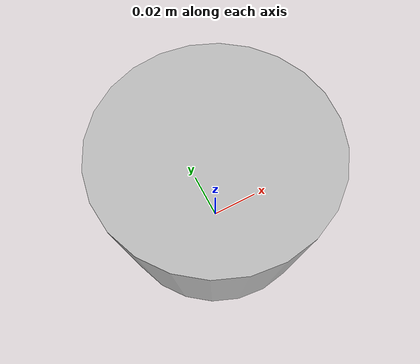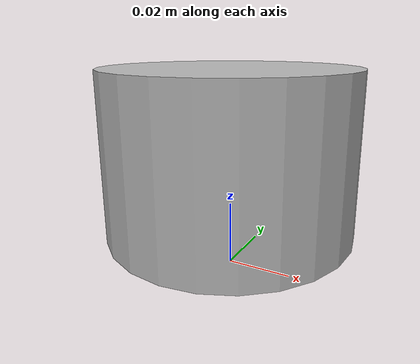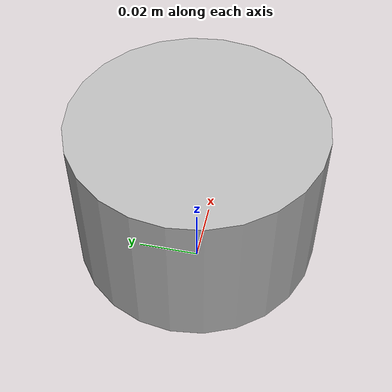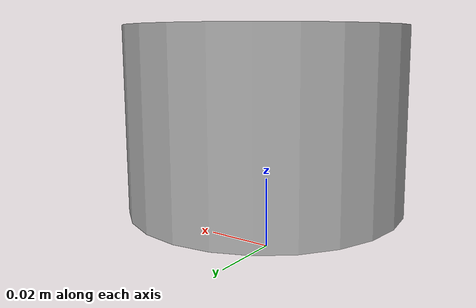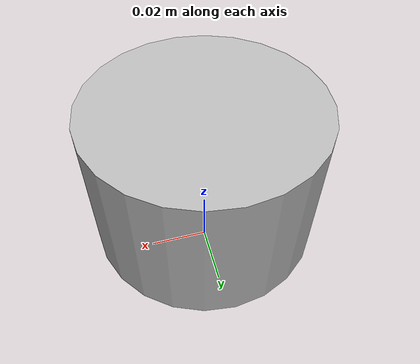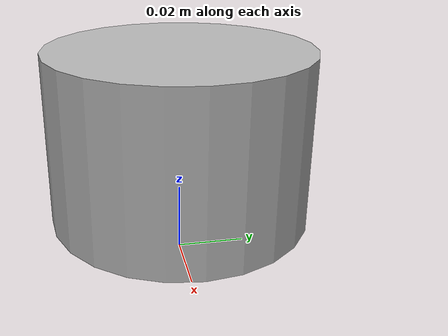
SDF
<?xml version="1.0" ?>
<sdf version="1.6">
  <model name="atom4">
    <link name="link">
      <pose>0 0 0.0125 0 0 0</pose>
      <inertial>
        <pose>0 0 0.025 0 0 0</pose>
        <mass>0.34</mass>
        <inertia>
          <ixx>0.001</ixx>
          <ixy>0</ixy>
          <ixz>0</ixz>
          <iyy>0.001</iyy>
          <iyz>0</iyz>
          <izz>0.001</izz>
        </inertia>
      </inertial>
      <collision name="collision">
        <geometry>
          <mesh>
            <uri>model://atom4/meshes/atom4.dae</uri>
          </mesh>
        </geometry>
      </collision>
      <visual name="visual">
        <geometry>
          <mesh>
            <uri>model://atom4/meshes/atom4.dae</uri>
          </mesh>
        </geometry>
      </visual>
    </link>
  </model>
</sdf>
